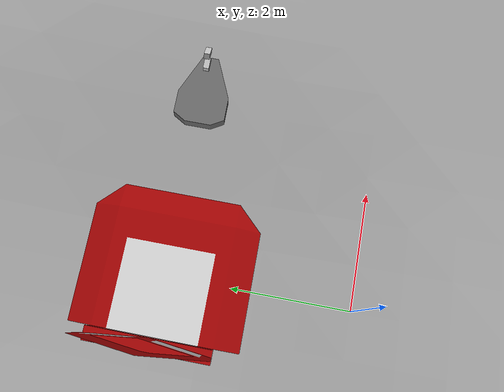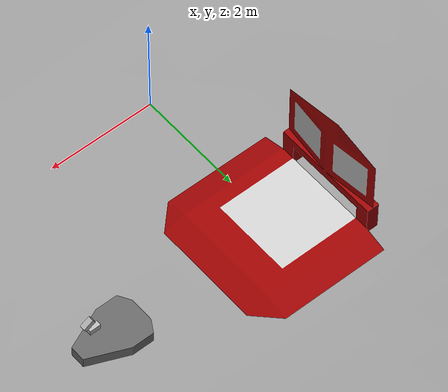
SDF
<sdf version="1.4">
    <world name="default">
      <include>
        <uri>model://sun</uri>
      </include>

      <model name='ground_plane'>
        <static>1</static>
        <link name='link'>
          <collision name='collision'>
            <geometry>
              <mesh>
                <uri>model://models/course_1.DAE</uri>
              </mesh>
            </geometry>
            <surface>
              <friction>
                <ode>
                  <mu>100</mu>
                  <mu2>50</mu2>
                </ode>
              </friction>
              <contact>
                <ode/>
              </contact>
              <bounce/>
            </surface>
            <max_contacts>10</max_contacts>
          </collision>
          <visual name='visual'>
            <cast_shadows>0</cast_shadows>
            <geometry>
              <mesh>
                <uri>model://models/course_1.DAE</uri>
              </mesh>
            </geometry>
            <material>
              <script>
                <uri>file://media/materials/scripts/gazebo.material</uri>
                <name>Gazebo/Grey</name>
              </script>
            </material>
          </visual>
          <velocity_decay>
            <linear>0</linear>
            <angular>0</angular>
          </velocity_decay>
          <self_collide>0</self_collide>
          <kinematic>0</kinematic>
          <gravity>1</gravity>
        </link>
      </model>

      <include>
        <uri>model://models</uri>
        <name>kratos</name>
        <pose>3 3.094 0 0 0 0</pose>
      </include>

       <model name='kratos_plataform'>
        <static>1</static>
        <pose>0 3.094 0 0 0 0</pose>
        <link name='link'>
          <collision name='collision'>
            <geometry>
              <mesh>
                <scale>100 100 100</scale>
                <uri>model://models/kratos_plataform4.dae</uri>
              </mesh>
            </geometry>
            <surface>
              <friction>
                <ode>
                  <mu>100</mu>
                  <mu2>50</mu2>
                </ode>
              </friction>
              <contact>
                <ode/>
              </contact>
              <bounce/>
            </surface>
            <max_contacts>10</max_contacts>
          </collision>
          <visual name='visual'>
            <cast_shadows>0</cast_shadows>
            <geometry>
              <mesh>
                <scale>100 100 100</scale>
                <uri>model://models/kratos_plataform4.dae</uri>
              </mesh>
            </geometry>

          </visual>
          <velocity_decay>
            <linear>0</linear>
            <angular>0</angular>
          </velocity_decay>
          <self_collide>0</self_collide>
          <kinematic>0</kinematic>
          <gravity>1</gravity>
        </link>
      </model>
    </world>
  </sdf>

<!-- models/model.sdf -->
<sdf version='1.4'>
  <model name="Kratos">

   <static>true</static>

  <!-----------------------------------------
          BODY
  ------------------------------------------->
   <link name='chassis'>
    <pose>0 0 0 0 0 0</pose>

    <inertial>
      <pose>0 0.5 0.1 0 -0 0</pose>
      <mass>10</mass>
    </inertial>

    <collision name='collision'>
      <geometry>
        <mesh>
          <scale>10 10 10</scale>
          <uri>model://models/kratos2.dae</uri>
        </mesh>
      </geometry>
    </collision>

    <visual name='visual'>
      <geometry>
        <mesh>
          <scale>10 10 10</scale>
          <uri>model://models/kratos2.dae</uri>
        </mesh>
      </geometry>
    </visual>

    <collision name='caster_collision'>
      <pose>0.8 0 -0.057 0 0 0</pose>
      <geometry>
        <sphere>
          <radius>.05</radius>
        </sphere>
      </geometry>

      <surface>
        <friction>
          <ode>
            <mu>0</mu>
            <mu2>0</mu2>
            <slip1>1.0</slip1>
            <slip2>1.0</slip2>
          </ode>
        </friction>
      </surface>
    </collision>

    <visual name='caster_visual'>
      <pose>0.8 0 -0.057 0 0 0</pose>
      <geometry>
        <sphere>
          <radius>.05</radius>
        </sphere>
      </geometry>
    </visual>

   <visual name='depth_visual'>
      <pose>0.7 0 0.8 0 0.52359878 0</pose>
      <geometry>
        <box>
          <size>0.2 0.1 0.1</size>
        </box>
      </geometry>
    </visual>

    <sensor type="depth" name="xtion_sensor">
      <pose>0.7 0 0.8 0 0.52359878 0</pose>
      <always_on>true</always_on>
      <update_rate>1.0</update_rate>
      <topic>tteesstt</topic>
      <camera>
        <horizontal_fov>1.047</horizontal_fov>
        <image>
          <width>640</width>
          <height>480</height>
          <format>R8G8B8</format>
        </image>
        <clip>
          <near>0.05</near>
          <far>5</far>
        </clip>
      </camera>
      <visualize>true</visualize>
    </sensor>

  </link>

  <!-----------------------------------------
          April Tag Camera
  ------------------------------------------->

  <link name="april_tag_link">
    <pose>0.6 0.0 0.6 0 0 3.14</pose>

    <visual name='depth_visual'>
      <pose>0 0 0 0 0 0</pose>
      <geometry>
        <box>
          <size>0.2 0.1 0.1</size>
        </box>
      </geometry>
    </visual>

    <sensor type="camera" name="camera1">
      <pose>0 0 0 0 0 0</pose>
      <always_on>true</always_on>
      <update_rate>1.0</update_rate>
      <camera name="head">
        <horizontal_fov>1.2291</horizontal_fov>
        <image>
          <width>1920</width>
          <height>1080</height>
          <format>R8G8B8</format>
        </image>
        <clip>
          <near>0.02</near>
          <far>300</far>
        </clip>
      </camera>
    </sensor>

  </link>

  <!-----------------------------------------
          WHEELS
  ------------------------------------------->

  <link name="left_wheel">
    <pose>0.0 0.31 0.0 1.5707 1.5707 0</pose>
    <collision name="collision">
      <geometry>
        <cylinder>
          <radius>.157</radius>
          <length>.065</length>
        </cylinder>
      </geometry>

      <surface>
        <friction>
          <ode>
            <mu>100.0</mu>
            <mu2>100.0</mu2>
            <slip1>1.0</slip1>
            <slip2>1.0</slip2>
          </ode>
        </friction>
      </surface>

    </collision>
    <visual name="visual">
      <geometry>
        <cylinder>
          <radius>.157</radius>
          <length>.065</length>
        </cylinder>
      </geometry>
    </visual>
  </link>

  <link name="right_wheel">
    <pose>0.0 -0.31 0.0 1.5707 1.5707 0</pose>
    <collision name="collision">
      <geometry>
        <cylinder>
          <radius>.157</radius>
          <length>.065</length>
        </cylinder>
      </geometry>

      <surface>
        <friction>
          <ode>
            <mu>100.0</mu>
            <mu2>100.0</mu2>
            <slip1>1.0</slip1>
            <slip2>1.0</slip2>
          </ode>
        </friction>
      </surface>

    </collision>
    <visual name="visual">
      <geometry>
        <cylinder>
          <radius>.157</radius>
          <length>.065</length>
        </cylinder>
      </geometry>
    </visual>
  </link>

  <joint type="revolute" name="left_wheel_hinge">
    <pose>0 0 0 0 0 0</pose>
    <child>left_wheel</child>
    <parent>chassis</parent>
    <axis>
      <xyz>1 0 0</xyz>
      <dynamics>
        <friction>20.0</friction>
        <damping>20.0</damping>
      </dynamics>
    </axis>
  </joint>

  <joint type="revolute" name="right_wheel_hinge">
    <pose>0 0 0 0 0 0</pose>
    <child>right_wheel</child>
    <parent>chassis</parent>
    <axis>
      <xyz>1 0 0</xyz>
      <dynamics>
        <friction>20.0</friction>
        <damping>20.0</damping>
      </dynamics>
    </axis>
  </joint>

  <plugin name="kratos" filename="libkratos.so"/>
</model>
</sdf>
